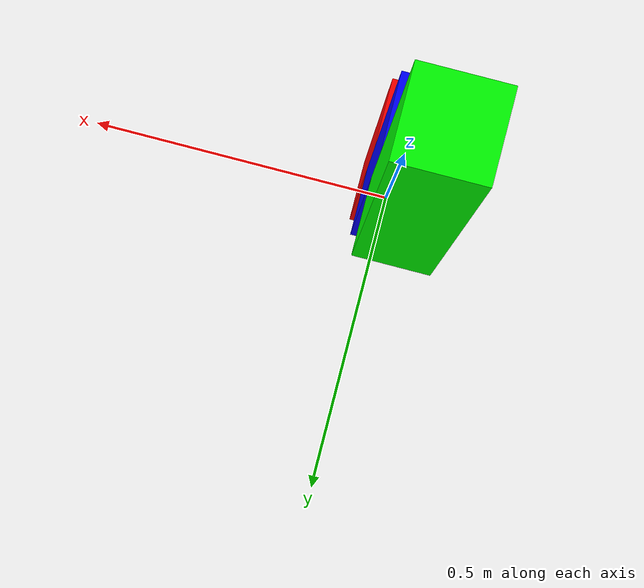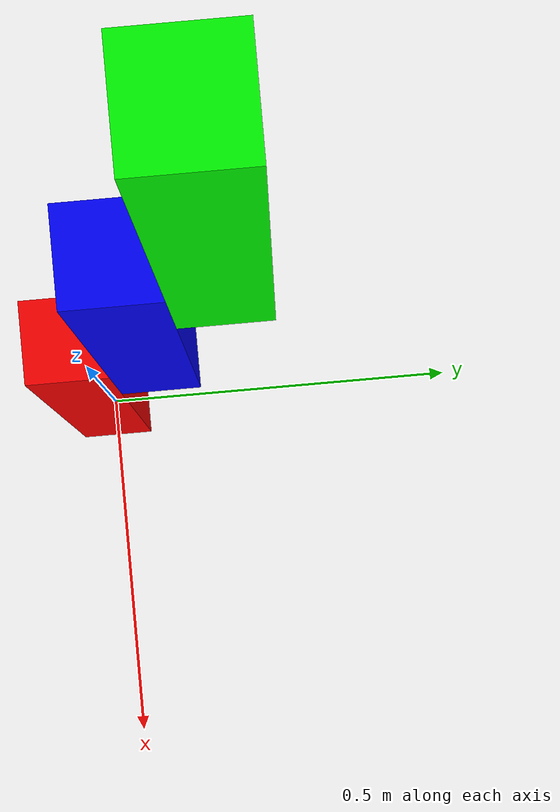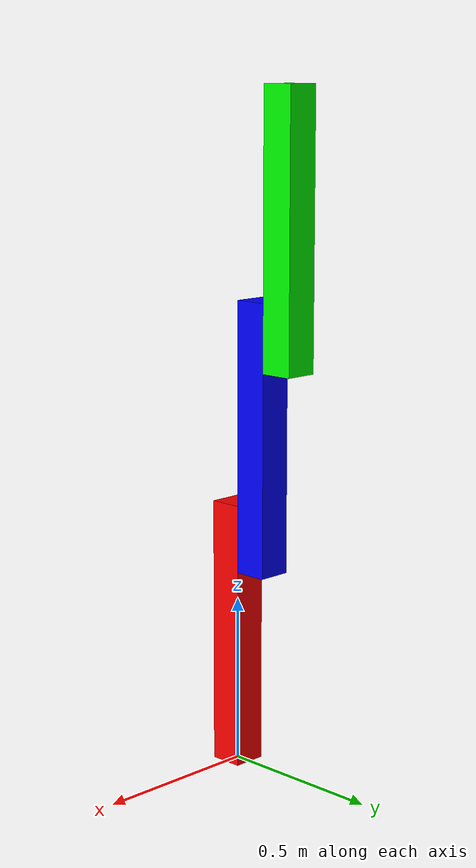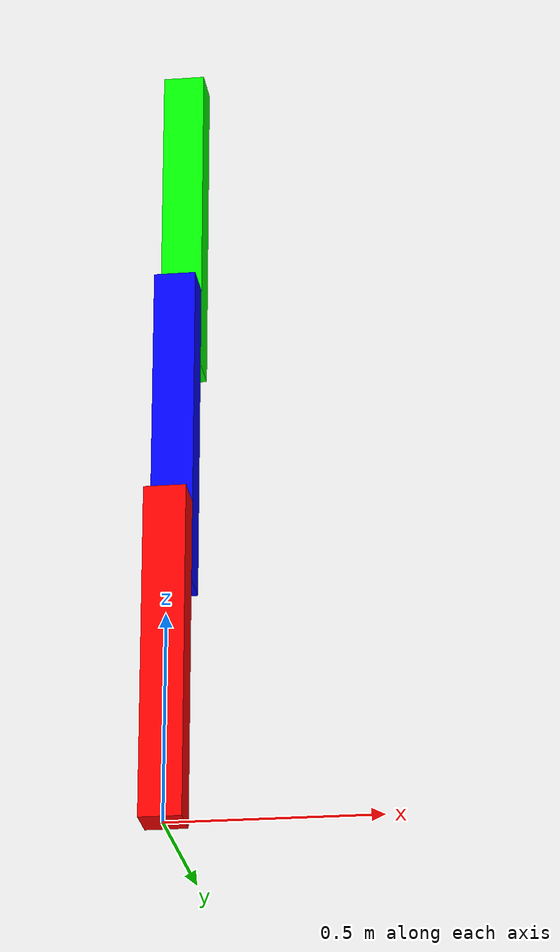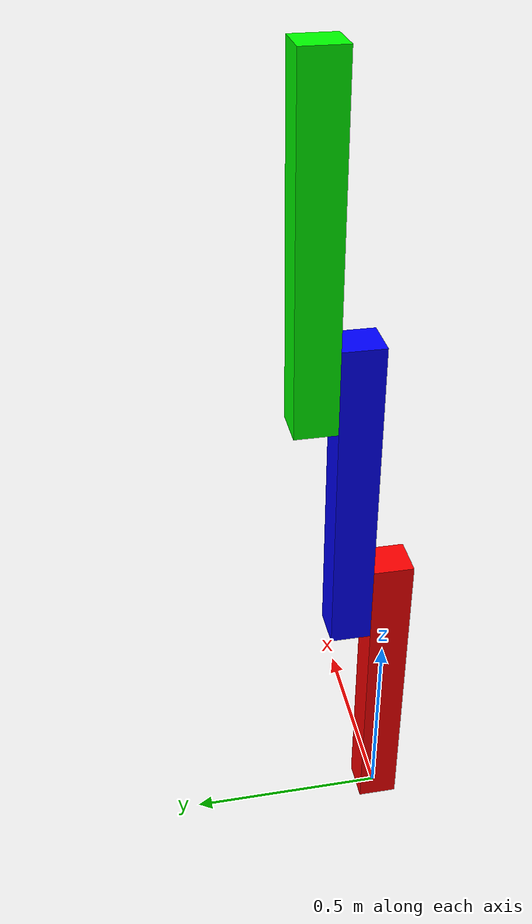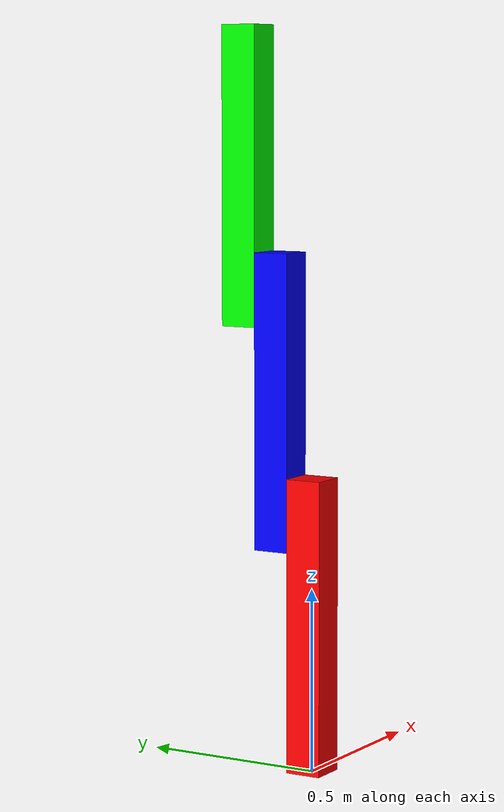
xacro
<?xml version="1.0"?>
<robot name="simple_robot" xmlns:xacro="http://www.ros.org/wiki/xacro">

<xacro:include filename="$(find ros2_control_tuto)/model/parameters.xacro" />
<xacro:include filename="$(find ros2_control_tuto)/model/gazebo.xacro" />

<link name="world"></link>

<link name="first_link">
        <visual>
                <geometry>
                        <box size="${a} ${b} ${c}" />
                </geometry>
                <origin rpy="0 0 0" xyz="0 0 ${s}"/>
                <material name="red"/>
        </visual>

        <collision>
                <geometry>
                        <box size="${a} ${b} ${c}" />
                </geometry>
                <origin rpy="0 0 0" xyz="0 0 ${s}"/>
        </collision>

        <xacro:inertia_body />
</link>

<link name="second_link">
        <visual>
                <geometry>
                        <box size="${a} ${b} ${c}" />
                </geometry>
                <origin rpy="0 0 0" xyz="0 0 ${s}"/>
                <material name="blue"/>
        </visual>

        <collision>
                <geometry>
                        <box size="${a} ${b} ${c}" />
                </geometry>
                <origin rpy="0 0 0" xyz="0 0 ${s}"/>
        </collision>

        <xacro:inertia_body />
</link>

<link name="third_link">
        <visual>
                <geometry>
                        <box size="${a} ${b} ${c}"/>
                </geometry>
                <origin rpy="0 0 0" xyz="0 0 ${s}"/>
                <material name="green" />
        </visual>
        <collision>
                <geometry>
                        <box size="${a} ${b} ${c}"/>
                </geometry>
                <origin rpy="0 0 0" xyz="0 0 ${s}"/>
                <material name="green" />
        </collision>

        <xacro:inertia_body />
</link>

<joint name="fixed_joint" type="fixed">
        <parent link="world"/>
        <child link="first_link"/>
</joint>

<joint name="first_joint" type="revolute" >
        <parent link="first_link" />
        <child link="second_link" />
        <origin xyz="0 ${b} ${q}" rpy="0 0 0"/>
        <axis xyz="0 1 0"/>
        <limit effort="5000" velocity="10" lower="-1.571" upper="1.571"/>
        <dynamics damping="1.0" friction="1.0"/>
</joint>

<joint name="second_joint" type="continuous">
        <parent link="second_link" />
        <child link="third_link" />
        <origin xyz="0 ${b} ${q}" rpy="0 0 0"/>
        <axis xyz="0 1 0"/>
        <limit effort="5000" velocity="10"/>
        <dynamics damping="1.0" friction="1.0"/>
</joint>

<ros2_control name="RobotController" type="system">

        <hardware>
                <plugin>gz_ros2_control/GazeboSimSystem</plugin>
        </hardware>

        <joint name="first_joint">
                <command_interface name="position">
                        <param name="min">-1.571</param>
                        <param name="max">1.571</param>
                </command_interface>
                <state_interface name="position"/>
        </joint>

        <joint name="second_joint">
                <command_interface name="velocity">
                        <param name="min">-1.571</param>
                        <param name="max">1.571</param>
                </command_interface>
                <state_interface name="velocity"/>
                <state_interface name="position"/>
        </joint>

</ros2_control>

</robot>

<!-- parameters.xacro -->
<robot xmlns:xacro="http://www.ros.org/wiki/xacro">

<xacro:property name="a" value="0.1" />
<xacro:property name="b" value="0.1" />
<xacro:property name="c" value="0.8" />

<xacro:property name="s" value="${c/2}"/>
<xacro:property name="q" value="${c-c/4}"/>
<xacro:property name="d" value="2710.0"/>
<xacro:property name="m" value="${d*a*b*c}"/>

<xacro:property name="Ix_body" value="${(1/12)*m*(b*b+c*c)}" />
<xacro:property name="Iy_body" value="${(1/12)*m*(a*a+b*b)}" />
<xacro:property name="Iz_body" value="${(1/12)*m*(a*a+c*c)}" />

<xacro:macro name="inertia_body">
        <inertial>
        <origin rpy="0 0 0" xyz="0 0 ${s}"/>
        <mass value="${m}"/>
        <inertia ixx="${Ix_body}" ixy="0.0" ixz="0.0" iyy="${Iy_body}" iyz="0" izz="${Iz_body}" />
        </inertial>
</xacro:macro>

<material name="blue">
        <color rgba="0 0 1 1"/>
</material>

<material name="red">
        <color rgba="1 0 0 1"/>
</material>

<material name="green">
        <color rgba="0 1 0 1"/>
</material>

</robot>
